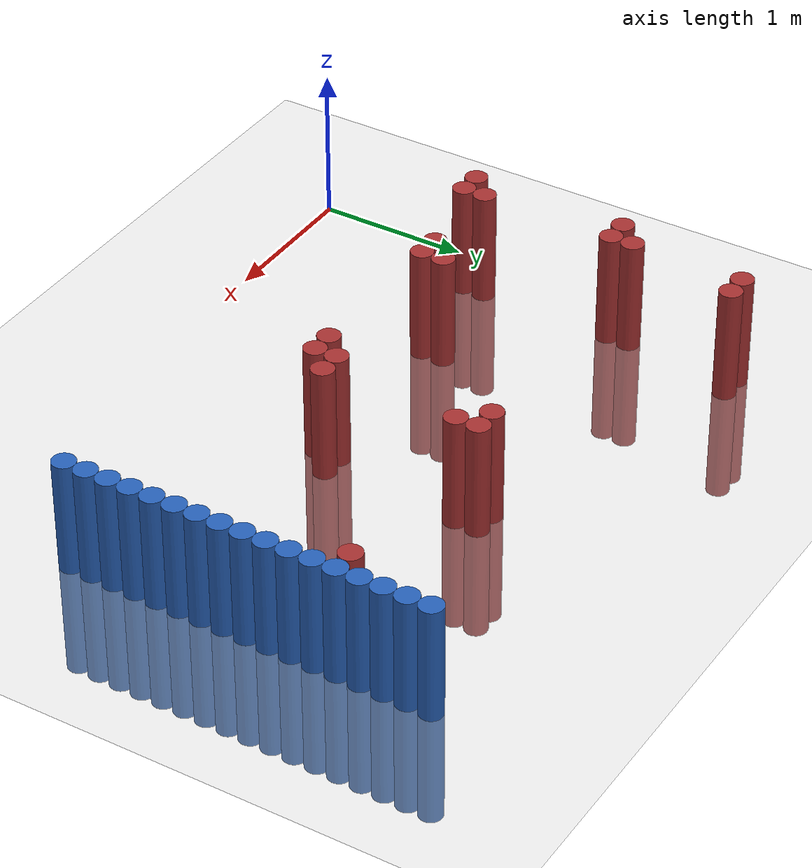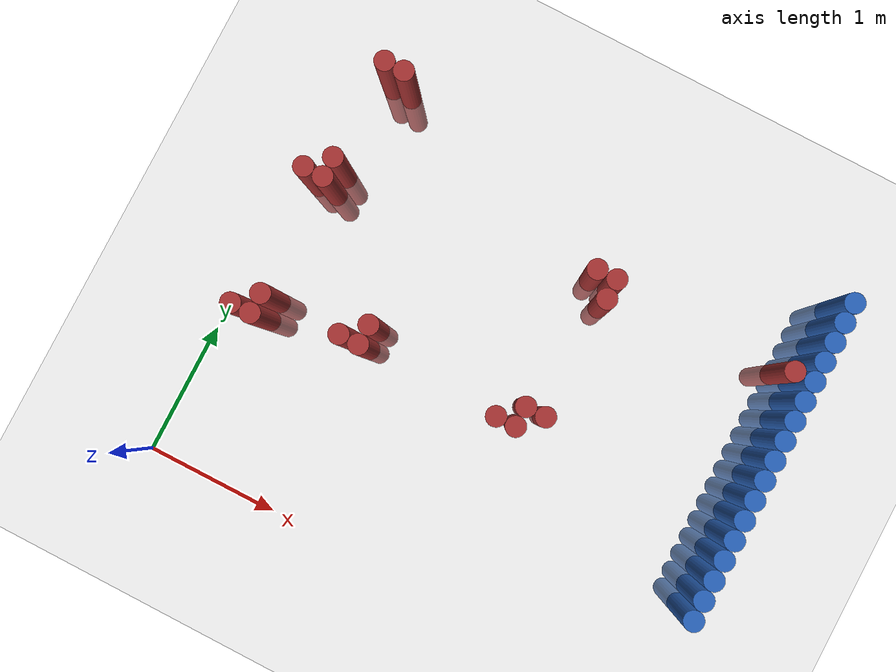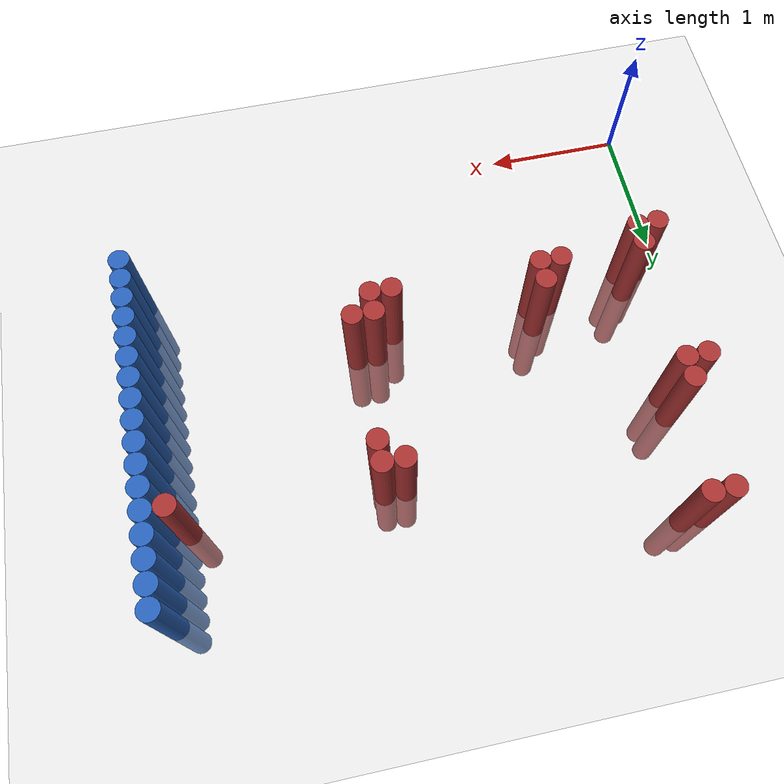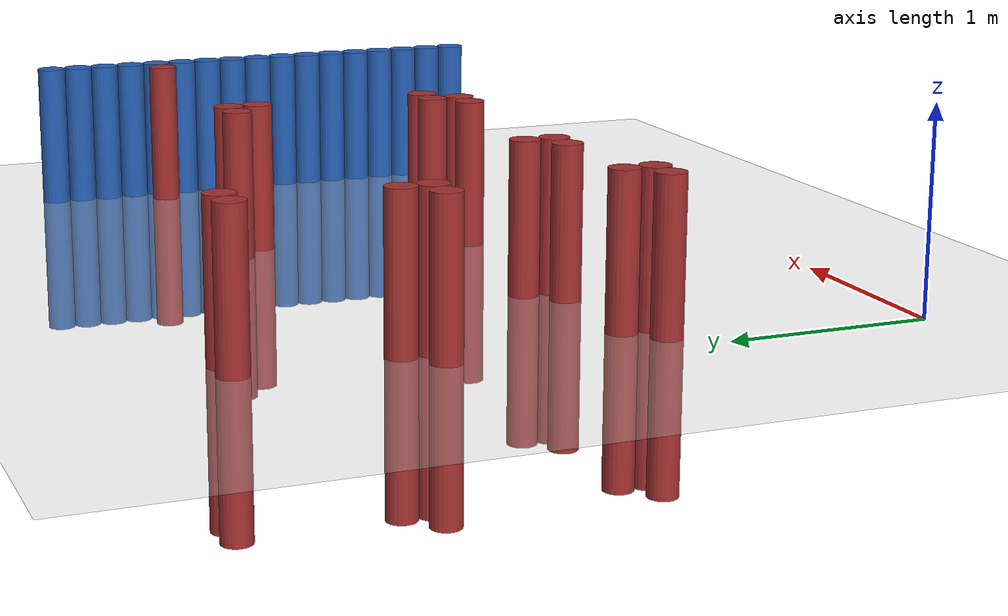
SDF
<sdf version="1.6">
 <world name="default">
  <model name="ground_plane">
   <static>1</static>
   <link name="link">
    <collision name="collision">
     <geometry><plane><normal>0 0 1</normal><size>100 100</size></plane></geometry>
     <surface><friction><ode><mu>100</mu><mu2>50</mu2></ode></friction></surface>
    </collision>
    <visual name="visual">
     <cast_shadows>0</cast_shadows>
     <geometry><plane><normal>0 0 1</normal><size>100 100</size></plane></geometry>
     <material>
      <script><uri>file://media/materials/scripts/gazebo.material</uri><name>Gazebo/Grey</name></script>
     </material>
    </visual>
   </link>
  </model>
  <model name="unit_cylinder_126">
   <static>1</static>
   <pose>3.925000 0.925000 0.000000 0.000000 0.000000 0.000000</pose>
   <link name="link">
    <inertial>
     <mass>1</mass>
     <inertia><ixx>0.145833</ixx><ixy>0</ixy><ixz>0</ixz><iyy>0.145833</iyy><iyz>0</iyz><izz>0.125</izz></inertia>
    </inertial>
    <collision name="collision">
     <geometry><cylinder><radius>0.075000</radius><length>1.5</length></cylinder></geometry>
    </collision>
    <visual name="visual">
     <geometry><cylinder><radius>0.075000</radius><length>1.5</length></cylinder></geometry>
     <material>
      <ambient>0.152000 0.379000 0.720000 1</ambient>
      <diffuse>0.152000 0.379000 0.720000 1</diffuse>
     </material>
     <material>
      <script><name>Gazebo/Grey</name><uri>file://media/materials/scripts/gazebo.material</uri></script>
     </material>
    </visual>
   </link>
  </model>
  <model name="unit_cylinder_128">
   <static>1</static>
   <pose>3.925000 1.075000 0.000000 0.000000 0.000000 0.000000</pose>
   <link name="link">
    <inertial>
     <mass>1</mass>
     <inertia><ixx>0.145833</ixx><ixy>0</ixy><ixz>0</ixz><iyy>0.145833</iyy><iyz>0</iyz><izz>0.125</izz></inertia>
    </inertial>
    <collision name="collision">
     <geometry><cylinder><radius>0.075000</radius><length>1.5</length></cylinder></geometry>
    </collision>
    <visual name="visual">
     <geometry><cylinder><radius>0.075000</radius><length>1.5</length></cylinder></geometry>
     <material>
      <ambient>0.152000 0.379000 0.720000 1</ambient>
      <diffuse>0.152000 0.379000 0.720000 1</diffuse>
     </material>
     <material>
      <script><name>Gazebo/Grey</name><uri>file://media/materials/scripts/gazebo.material</uri></script>
     </material>
    </visual>
   </link>
  </model>
  <model name="unit_cylinder_130">
   <static>1</static>
   <pose>3.925000 1.225000 0.000000 0.000000 0.000000 0.000000</pose>
   <link name="link">
    <inertial>
     <mass>1</mass>
     <inertia><ixx>0.145833</ixx><ixy>0</ixy><ixz>0</ixz><iyy>0.145833</iyy><iyz>0</iyz><izz>0.125</izz></inertia>
    </inertial>
    <collision name="collision">
     <geometry><cylinder><radius>0.075000</radius><length>1.5</length></cylinder></geometry>
    </collision>
    <visual name="visual">
     <geometry><cylinder><radius>0.075000</radius><length>1.5</length></cylinder></geometry>
     <material>
      <ambient>0.152000 0.379000 0.720000 1</ambient>
      <diffuse>0.152000 0.379000 0.720000 1</diffuse>
     </material>
     <material>
      <script><name>Gazebo/Grey</name><uri>file://media/materials/scripts/gazebo.material</uri></script>
     </material>
    </visual>
   </link>
  </model>
  <model name="unit_cylinder_132">
   <static>1</static>
   <pose>3.925000 1.375000 0.000000 0.000000 0.000000 0.000000</pose>
   <link name="link">
    <inertial>
     <mass>1</mass>
     <inertia><ixx>0.145833</ixx><ixy>0</ixy><ixz>0</ixz><iyy>0.145833</iyy><iyz>0</iyz><izz>0.125</izz></inertia>
    </inertial>
    <collision name="collision">
     <geometry><cylinder><radius>0.075000</radius><length>1.5</length></cylinder></geometry>
    </collision>
    <visual name="visual">
     <geometry><cylinder><radius>0.075000</radius><length>1.5</length></cylinder></geometry>
     <material>
      <ambient>0.152000 0.379000 0.720000 1</ambient>
      <diffuse>0.152000 0.379000 0.720000 1</diffuse>
     </material>
     <material>
      <script><name>Gazebo/Grey</name><uri>file://media/materials/scripts/gazebo.material</uri></script>
     </material>
    </visual>
   </link>
  </model>
  <model name="unit_cylinder_134">
   <static>1</static>
   <pose>3.925000 1.525000 0.000000 0.000000 0.000000 0.000000</pose>
   <link name="link">
    <inertial>
     <mass>1</mass>
     <inertia><ixx>0.145833</ixx><ixy>0</ixy><ixz>0</ixz><iyy>0.145833</iyy><iyz>0</iyz><izz>0.125</izz></inertia>
    </inertial>
    <collision name="collision">
     <geometry><cylinder><radius>0.075000</radius><length>1.5</length></cylinder></geometry>
    </collision>
    <visual name="visual">
     <geometry><cylinder><radius>0.075000</radius><length>1.5</length></cylinder></geometry>
     <material>
      <ambient>0.152000 0.379000 0.720000 1</ambient>
      <diffuse>0.152000 0.379000 0.720000 1</diffuse>
     </material>
     <material>
      <script><name>Gazebo/Grey</name><uri>file://media/materials/scripts/gazebo.material</uri></script>
     </material>
    </visual>
   </link>
  </model>
  <model name="unit_cylinder_136">
   <static>1</static>
   <pose>3.925000 1.675000 0.000000 0.000000 0.000000 0.000000</pose>
   <link name="link">
    <inertial>
     <mass>1</mass>
     <inertia><ixx>0.145833</ixx><ixy>0</ixy><ixz>0</ixz><iyy>0.145833</iyy><iyz>0</iyz><izz>0.125</izz></inertia>
    </inertial>
    <collision name="collision">
     <geometry><cylinder><radius>0.075000</radius><length>1.5</length></cylinder></geometry>
    </collision>
    <visual name="visual">
     <geometry><cylinder><radius>0.075000</radius><length>1.5</length></cylinder></geometry>
     <material>
      <ambient>0.152000 0.379000 0.720000 1</ambient>
      <diffuse>0.152000 0.379000 0.720000 1</diffuse>
     </material>
     <material>
      <script><name>Gazebo/Grey</name><uri>file://media/materials/scripts/gazebo.material</uri></script>
     </material>
    </visual>
   </link>
  </model>
  <model name="unit_cylinder_138">
   <static>1</static>
   <pose>3.925000 1.825000 0.000000 0.000000 0.000000 0.000000</pose>
   <link name="link">
    <inertial>
     <mass>1</mass>
     <inertia><ixx>0.145833</ixx><ixy>0</ixy><ixz>0</ixz><iyy>0.145833</iyy><iyz>0</iyz><izz>0.125</izz></inertia>
    </inertial>
    <collision name="collision">
     <geometry><cylinder><radius>0.075000</radius><length>1.5</length></cylinder></geometry>
    </collision>
    <visual name="visual">
     <geometry><cylinder><radius>0.075000</radius><length>1.5</length></cylinder></geometry>
     <material>
      <ambient>0.152000 0.379000 0.720000 1</ambient>
      <diffuse>0.152000 0.379000 0.720000 1</diffuse>
     </material>
     <material>
      <script><name>Gazebo/Grey</name><uri>file://media/materials/scripts/gazebo.material</uri></script>
     </material>
    </visual>
   </link>
  </model>
  <model name="unit_cylinder_140">
   <static>1</static>
   <pose>3.925000 1.975000 0.000000 0.000000 0.000000 0.000000</pose>
   <link name="link">
    <inertial>
     <mass>1</mass>
     <inertia><ixx>0.145833</ixx><ixy>0</ixy><ixz>0</ixz><iyy>0.145833</iyy><iyz>0</iyz><izz>0.125</izz></inertia>
    </inertial>
    <collision name="collision">
     <geometry><cylinder><radius>0.075000</radius><length>1.5</length></cylinder></geometry>
    </collision>
    <visual name="visual">
     <geometry><cylinder><radius>0.075000</radius><length>1.5</length></cylinder></geometry>
     <material>
      <ambient>0.152000 0.379000 0.720000 1</ambient>
      <diffuse>0.152000 0.379000 0.720000 1</diffuse>
     </material>
     <material>
      <script><name>Gazebo/Grey</name><uri>file://media/materials/scripts/gazebo.material</uri></script>
     </material>
    </visual>
   </link>
  </model>
  <model name="unit_cylinder_142">
   <static>1</static>
   <pose>3.925000 2.125000 0.000000 0.000000 0.000000 0.000000</pose>
   <link name="link">
    <inertial>
     <mass>1</mass>
     <inertia><ixx>0.145833</ixx><ixy>0</ixy><ixz>0</ixz><iyy>0.145833</iyy><iyz>0</iyz><izz>0.125</izz></inertia>
    </inertial>
    <collision name="collision">
     <geometry><cylinder><radius>0.075000</radius><length>1.5</length></cylinder></geometry>
    </collision>
    <visual name="visual">
     <geometry><cylinder><radius>0.075000</radius><length>1.5</length></cylinder></geometry>
     <material>
      <ambient>0.152000 0.379000 0.720000 1</ambient>
      <diffuse>0.152000 0.379000 0.720000 1</diffuse>
     </material>
     <material>
      <script><name>Gazebo/Grey</name><uri>file://media/materials/scripts/gazebo.material</uri></script>
     </material>
    </visual>
   </link>
  </model>
  <model name="unit_cylinder_144">
   <static>1</static>
   <pose>3.925000 2.275000 0.000000 0.000000 0.000000 0.000000</pose>
   <link name="link">
    <inertial>
     <mass>1</mass>
     <inertia><ixx>0.145833</ixx><ixy>0</ixy><ixz>0</ixz><iyy>0.145833</iyy><iyz>0</iyz><izz>0.125</izz></inertia>
    </inertial>
    <collision name="collision">
     <geometry><cylinder><radius>0.075000</radius><length>1.5</length></cylinder></geometry>
    </collision>
    <visual name="visual">
     <geometry><cylinder><radius>0.075000</radius><length>1.5</length></cylinder></geometry>
     <material>
      <ambient>0.152000 0.379000 0.720000 1</ambient>
      <diffuse>0.152000 0.379000 0.720000 1</diffuse>
     </material>
     <material>
      <script><name>Gazebo/Grey</name><uri>file://media/materials/scripts/gazebo.material</uri></script>
     </material>
    </visual>
   </link>
  </model>
  <model name="unit_cylinder_146">
   <static>1</static>
   <pose>3.925000 2.425000 0.000000 0.000000 0.000000 0.000000</pose>
   <link name="link">
    <inertial>
     <mass>1</mass>
     <inertia><ixx>0.145833</ixx><ixy>0</ixy><ixz>0</ixz><iyy>0.145833</iyy><iyz>0</iyz><izz>0.125</izz></inertia>
    </inertial>
    <collision name="collision">
     <geometry><cylinder><radius>0.075000</radius><length>1.5</length></cylinder></geometry>
    </collision>
    <visual name="visual">
     <geometry><cylinder><radius>0.075000</radius><length>1.5</length></cylinder></geometry>
     <material>
      <ambient>0.152000 0.379000 0.720000 1</ambient>
      <diffuse>0.152000 0.379000 0.720000 1</diffuse>
     </material>
     <material>
      <script><name>Gazebo/Grey</name><uri>file://media/materials/scripts/gazebo.material</uri></script>
     </material>
    </visual>
   </link>
  </model>
  <model name="unit_cylinder_148">
   <static>1</static>
   <pose>3.925000 2.575000 0.000000 0.000000 0.000000 0.000000</pose>
   <link name="link">
    <inertial>
     <mass>1</mass>
     <inertia><ixx>0.145833</ixx><ixy>0</ixy><ixz>0</ixz><iyy>0.145833</iyy><iyz>0</iyz><izz>0.125</izz></inertia>
    </inertial>
    <collision name="collision">
     <geometry><cylinder><radius>0.075000</radius><length>1.5</length></cylinder></geometry>
    </collision>
    <visual name="visual">
     <geometry><cylinder><radius>0.075000</radius><length>1.5</length></cylinder></geometry>
     <material>
      <ambient>0.152000 0.379000 0.720000 1</ambient>
      <diffuse>0.152000 0.379000 0.720000 1</diffuse>
     </material>
     <material>
      <script><name>Gazebo/Grey</name><uri>file://media/materials/scripts/gazebo.material</uri></script>
     </material>
    </visual>
   </link>
  </model>
  <model name="unit_cylinder_150">
   <static>1</static>
   <pose>3.925000 2.725000 0.000000 0.000000 0.000000 0.000000</pose>
   <link name="link">
    <inertial>
     <mass>1</mass>
     <inertia><ixx>0.145833</ixx><ixy>0</ixy><ixz>0</ixz><iyy>0.145833</iyy><iyz>0</iyz><izz>0.125</izz></inertia>
    </inertial>
    <collision name="collision">
     <geometry><cylinder><radius>0.075000</radius><length>1.5</length></cylinder></geometry>
    </collision>
    <visual name="visual">
     <geometry><cylinder><radius>0.075000</radius><length>1.5</length></cylinder></geometry>
     <material>
      <ambient>0.152000 0.379000 0.720000 1</ambient>
      <diffuse>0.152000 0.379000 0.720000 1</diffuse>
     </material>
     <material>
      <script><name>Gazebo/Grey</name><uri>file://media/materials/scripts/gazebo.material</uri></script>
     </material>
    </visual>
   </link>
  </model>
  <model name="unit_cylinder_152">
   <static>1</static>
   <pose>3.925000 2.875000 0.000000 0.000000 0.000000 0.000000</pose>
   <link name="link">
    <inertial>
     <mass>1</mass>
     <inertia><ixx>0.145833</ixx><ixy>0</ixy><ixz>0</ixz><iyy>0.145833</iyy><iyz>0</iyz><izz>0.125</izz></inertia>
    </inertial>
    <collision name="collision">
     <geometry><cylinder><radius>0.075000</radius><length>1.5</length></cylinder></geometry>
    </collision>
    <visual name="visual">
     <geometry><cylinder><radius>0.075000</radius><length>1.5</length></cylinder></geometry>
     <material>
      <ambient>0.152000 0.379000 0.720000 1</ambient>
      <diffuse>0.152000 0.379000 0.720000 1</diffuse>
     </material>
     <material>
      <script><name>Gazebo/Grey</name><uri>file://media/materials/scripts/gazebo.material</uri></script>
     </material>
    </visual>
   </link>
  </model>
  <model name="unit_cylinder_154">
   <static>1</static>
   <pose>3.925000 3.025000 0.000000 0.000000 0.000000 0.000000</pose>
   <link name="link">
    <inertial>
     <mass>1</mass>
     <inertia><ixx>0.145833</ixx><ixy>0</ixy><ixz>0</ixz><iyy>0.145833</iyy><iyz>0</iyz><izz>0.125</izz></inertia>
    </inertial>
    <collision name="collision">
     <geometry><cylinder><radius>0.075000</radius><length>1.5</length></cylinder></geometry>
    </collision>
    <visual name="visual">
     <geometry><cylinder><radius>0.075000</radius><length>1.5</length></cylinder></geometry>
     <material>
      <ambient>0.152000 0.379000 0.720000 1</ambient>
      <diffuse>0.152000 0.379000 0.720000 1</diffuse>
     </material>
     <material>
      <script><name>Gazebo/Grey</name><uri>file://media/materials/scripts/gazebo.material</uri></script>
     </material>
    </visual>
   </link>
  </model>
  <model name="unit_cylinder_156">
   <static>1</static>
   <pose>3.925000 3.175000 0.000000 0.000000 0.000000 0.000000</pose>
   <link name="link">
    <inertial>
     <mass>1</mass>
     <inertia><ixx>0.145833</ixx><ixy>0</ixy><ixz>0</ixz><iyy>0.145833</iyy><iyz>0</iyz><izz>0.125</izz></inertia>
    </inertial>
    <collision name="collision">
     <geometry><cylinder><radius>0.075000</radius><length>1.5</length></cylinder></geometry>
    </collision>
    <visual name="visual">
     <geometry><cylinder><radius>0.075000</radius><length>1.5</length></cylinder></geometry>
     <material>
      <ambient>0.152000 0.379000 0.720000 1</ambient>
      <diffuse>0.152000 0.379000 0.720000 1</diffuse>
     </material>
     <material>
      <script><name>Gazebo/Grey</name><uri>file://media/materials/scripts/gazebo.material</uri></script>
     </material>
    </visual>
   </link>
  </model>
  <model name="unit_cylinder_314">
   <static>1</static>
   <pose>0.175000 1.225000 0.000000 0.000000 0.000000 0.000000</pose>
   <link name="link">
    <inertial>
     <mass>1</mass>
     <inertia><ixx>0.145833</ixx><ixy>0</ixy><ixz>0</ixz><iyy>0.145833</iyy><iyz>0</iyz><izz>0.125</izz></inertia>
    </inertial>
    <collision name="collision">
     <geometry><cylinder><radius>0.075000</radius><length>1.5</length></cylinder></geometry>
    </collision>
    <visual name="visual">
     <geometry><cylinder><radius>0.075000</radius><length>1.5</length></cylinder></geometry>
     <material>
      <ambient>0.648000 0.192000 0.192000 1</ambient>
      <diffuse>0.648000 0.192000 0.192000 1</diffuse>
     </material>
     <material>
      <script><name>Gazebo/Grey</name><uri>file://media/materials/scripts/gazebo.material</uri></script>
     </material>
    </visual>
   </link>
  </model>
  <model name="unit_cylinder_315">
   <static>1</static>
   <pose>0.175000 2.275000 0.000000 0.000000 0.000000 0.000000</pose>
   <link name="link">
    <inertial>
     <mass>1</mass>
     <inertia><ixx>0.145833</ixx><ixy>0</ixy><ixz>0</ixz><iyy>0.145833</iyy><iyz>0</iyz><izz>0.125</izz></inertia>
    </inertial>
    <collision name="collision">
     <geometry><cylinder><radius>0.075000</radius><length>1.5</length></cylinder></geometry>
    </collision>
    <visual name="visual">
     <geometry><cylinder><radius>0.075000</radius><length>1.5</length></cylinder></geometry>
     <material>
      <ambient>0.648000 0.192000 0.192000 1</ambient>
      <diffuse>0.648000 0.192000 0.192000 1</diffuse>
     </material>
     <material>
      <script><name>Gazebo/Grey</name><uri>file://media/materials/scripts/gazebo.material</uri></script>
     </material>
    </visual>
   </link>
  </model>
  <model name="unit_cylinder_316">
   <static>1</static>
   <pose>0.325000 1.225000 0.000000 0.000000 0.000000 0.000000</pose>
   <link name="link">
    <inertial>
     <mass>1</mass>
     <inertia><ixx>0.145833</ixx><ixy>0</ixy><ixz>0</ixz><iyy>0.145833</iyy><iyz>0</iyz><izz>0.125</izz></inertia>
    </inertial>
    <collision name="collision">
     <geometry><cylinder><radius>0.075000</radius><length>1.5</length></cylinder></geometry>
    </collision>
    <visual name="visual">
     <geometry><cylinder><radius>0.075000</radius><length>1.5</length></cylinder></geometry>
     <material>
      <ambient>0.648000 0.192000 0.192000 1</ambient>
      <diffuse>0.648000 0.192000 0.192000 1</diffuse>
     </material>
     <material>
      <script><name>Gazebo/Grey</name><uri>file://media/materials/scripts/gazebo.material</uri></script>
     </material>
    </visual>
   </link>
  </model>
  <model name="unit_cylinder_317">
   <static>1</static>
   <pose>0.325000 1.375000 0.000000 0.000000 0.000000 0.000000</pose>
   <link name="link">
    <inertial>
     <mass>1</mass>
     <inertia><ixx>0.145833</ixx><ixy>0</ixy><ixz>0</ixz><iyy>0.145833</iyy><iyz>0</iyz><izz>0.125</izz></inertia>
    </inertial>
    <collision name="collision">
     <geometry><cylinder><radius>0.075000</radius><length>1.5</length></cylinder></geometry>
    </collision>
    <visual name="visual">
     <geometry><cylinder><radius>0.075000</radius><length>1.5</length></cylinder></geometry>
     <material>
      <ambient>0.648000 0.192000 0.192000 1</ambient>
      <diffuse>0.648000 0.192000 0.192000 1</diffuse>
     </material>
     <material>
      <script><name>Gazebo/Grey</name><uri>file://media/materials/scripts/gazebo.material</uri></script>
     </material>
    </visual>
   </link>
  </model>
  <model name="unit_cylinder_318">
   <static>1</static>
   <pose>0.325000 2.275000 0.000000 0.000000 0.000000 0.000000</pose>
   <link name="link">
    <inertial>
     <mass>1</mass>
     <inertia><ixx>0.145833</ixx><ixy>0</ixy><ixz>0</ixz><iyy>0.145833</iyy><iyz>0</iyz><izz>0.125</izz></inertia>
    </inertial>
    <collision name="collision">
     <geometry><cylinder><radius>0.075000</radius><length>1.5</length></cylinder></geometry>
    </collision>
    <visual name="visual">
     <geometry><cylinder><radius>0.075000</radius><length>1.5</length></cylinder></geometry>
     <material>
      <ambient>0.648000 0.192000 0.192000 1</ambient>
      <diffuse>0.648000 0.192000 0.192000 1</diffuse>
     </material>
     <material>
      <script><name>Gazebo/Grey</name><uri>file://media/materials/scripts/gazebo.material</uri></script>
     </material>
    </visual>
   </link>
  </model>
  <model name="unit_cylinder_319">
   <static>1</static>
   <pose>0.325000 2.425000 0.000000 0.000000 0.000000 0.000000</pose>
   <link name="link">
    <inertial>
     <mass>1</mass>
     <inertia><ixx>0.145833</ixx><ixy>0</ixy><ixz>0</ixz><iyy>0.145833</iyy><iyz>0</iyz><izz>0.125</izz></inertia>
    </inertial>
    <collision name="collision">
     <geometry><cylinder><radius>0.075000</radius><length>1.5</length></cylinder></geometry>
    </collision>
    <visual name="visual">
     <geometry><cylinder><radius>0.075000</radius><length>1.5</length></cylinder></geometry>
     <material>
      <ambient>0.648000 0.192000 0.192000 1</ambient>
      <diffuse>0.648000 0.192000 0.192000 1</diffuse>
     </material>
     <material>
      <script><name>Gazebo/Grey</name><uri>file://media/materials/scripts/gazebo.material</uri></script>
     </material>
    </visual>
   </link>
  </model>
  <model name="unit_cylinder_320">
   <static>1</static>
   <pose>0.325000 3.175000 0.000000 0.000000 0.000000 0.000000</pose>
   <link name="link">
    <inertial>
     <mass>1</mass>
     <inertia><ixx>0.145833</ixx><ixy>0</ixy><ixz>0</ixz><iyy>0.145833</iyy><iyz>0</iyz><izz>0.125</izz></inertia>
    </inertial>
    <collision name="collision">
     <geometry><cylinder><radius>0.075000</radius><length>1.5</length></cylinder></geometry>
    </collision>
    <visual name="visual">
     <geometry><cylinder><radius>0.075000</radius><length>1.5</length></cylinder></geometry>
     <material>
      <ambient>0.648000 0.192000 0.192000 1</ambient>
      <diffuse>0.648000 0.192000 0.192000 1</diffuse>
     </material>
     <material>
      <script><name>Gazebo/Grey</name><uri>file://media/materials/scripts/gazebo.material</uri></script>
     </material>
    </visual>
   </link>
  </model>
  <model name="unit_cylinder_321">
   <static>1</static>
   <pose>0.475000 3.175000 0.000000 0.000000 0.000000 0.000000</pose>
   <link name="link">
    <inertial>
     <mass>1</mass>
     <inertia><ixx>0.145833</ixx><ixy>0</ixy><ixz>0</ixz><iyy>0.145833</iyy><iyz>0</iyz><izz>0.125</izz></inertia>
    </inertial>
    <collision name="collision">
     <geometry><cylinder><radius>0.075000</radius><length>1.5</length></cylinder></geometry>
    </collision>
    <visual name="visual">
     <geometry><cylinder><radius>0.075000</radius><length>1.5</length></cylinder></geometry>
     <material>
      <ambient>0.648000 0.192000 0.192000 1</ambient>
      <diffuse>0.648000 0.192000 0.192000 1</diffuse>
     </material>
     <material>
      <script><name>Gazebo/Grey</name><uri>file://media/materials/scripts/gazebo.material</uri></script>
     </material>
    </visual>
   </link>
  </model>
  <model name="unit_cylinder_324">
   <static>1</static>
   <pose>0.925000 1.375000 0.000000 0.000000 0.000000 0.000000</pose>
   <link name="link">
    <inertial>
     <mass>1</mass>
     <inertia><ixx>0.145833</ixx><ixy>0</ixy><ixz>0</ixz><iyy>0.145833</iyy><iyz>0</iyz><izz>0.125</izz></inertia>
    </inertial>
    <collision name="collision">
     <geometry><cylinder><radius>0.075000</radius><length>1.5</length></cylinder></geometry>
    </collision>
    <visual name="visual">
     <geometry><cylinder><radius>0.075000</radius><length>1.5</length></cylinder></geometry>
     <material>
      <ambient>0.648000 0.192000 0.192000 1</ambient>
      <diffuse>0.648000 0.192000 0.192000 1</diffuse>
     </material>
     <material>
      <script><name>Gazebo/Grey</name><uri>file://media/materials/scripts/gazebo.material</uri></script>
     </material>
    </visual>
   </link>
  </model>
  <model name="unit_cylinder_327">
   <static>1</static>
   <pose>1.075000 1.375000 0.000000 0.000000 0.000000 0.000000</pose>
   <link name="link">
    <inertial>
     <mass>1</mass>
     <inertia><ixx>0.145833</ixx><ixy>0</ixy><ixz>0</ixz><iyy>0.145833</iyy><iyz>0</iyz><izz>0.125</izz></inertia>
    </inertial>
    <collision name="collision">
     <geometry><cylinder><radius>0.075000</radius><length>1.5</length></cylinder></geometry>
    </collision>
    <visual name="visual">
     <geometry><cylinder><radius>0.075000</radius><length>1.5</length></cylinder></geometry>
     <material>
      <ambient>0.648000 0.192000 0.192000 1</ambient>
      <diffuse>0.648000 0.192000 0.192000 1</diffuse>
     </material>
     <material>
      <script><name>Gazebo/Grey</name><uri>file://media/materials/scripts/gazebo.material</uri></script>
     </material>
    </visual>
   </link>
  </model>
  <model name="unit_cylinder_328">
   <static>1</static>
   <pose>1.075000 1.525000 0.000000 0.000000 0.000000 0.000000</pose>
   <link name="link">
    <inertial>
     <mass>1</mass>
     <inertia><ixx>0.145833</ixx><ixy>0</ixy><ixz>0</ixz><iyy>0.145833</iyy><iyz>0</iyz><izz>0.125</izz></inertia>
    </inertial>
    <collision name="collision">
     <geometry><cylinder><radius>0.075000</radius><length>1.5</length></cylinder></geometry>
    </collision>
    <visual name="visual">
     <geometry><cylinder><radius>0.075000</radius><length>1.5</length></cylinder></geometry>
     <material>
      <ambient>0.648000 0.192000 0.192000 1</ambient>
      <diffuse>0.648000 0.192000 0.192000 1</diffuse>
     </material>
     <material>
      <script><name>Gazebo/Grey</name><uri>file://media/materials/scripts/gazebo.material</uri></script>
     </material>
    </visual>
   </link>
  </model>
  <model name="unit_cylinder_330">
   <static>1</static>
   <pose>2.125000 1.375000 0.000000 0.000000 0.000000 0.000000</pose>
   <link name="link">
    <inertial>
     <mass>1</mass>
     <inertia><ixx>0.145833</ixx><ixy>0</ixy><ixz>0</ixz><iyy>0.145833</iyy><iyz>0</iyz><izz>0.125</izz></inertia>
    </inertial>
    <collision name="collision">
     <geometry><cylinder><radius>0.075000</radius><length>1.5</length></cylinder></geometry>
    </collision>
    <visual name="visual">
     <geometry><cylinder><radius>0.075000</radius><length>1.5</length></cylinder></geometry>
     <material>
      <ambient>0.648000 0.192000 0.192000 1</ambient>
      <diffuse>0.648000 0.192000 0.192000 1</diffuse>
     </material>
     <material>
      <script><name>Gazebo/Grey</name><uri>file://media/materials/scripts/gazebo.material</uri></script>
     </material>
    </visual>
   </link>
  </model>
  <model name="unit_cylinder_331">
   <static>1</static>
   <pose>2.275000 1.375000 0.000000 0.000000 0.000000 0.000000</pose>
   <link name="link">
    <inertial>
     <mass>1</mass>
     <inertia><ixx>0.145833</ixx><ixy>0</ixy><ixz>0</ixz><iyy>0.145833</iyy><iyz>0</iyz><izz>0.125</izz></inertia>
    </inertial>
    <collision name="collision">
     <geometry><cylinder><radius>0.075000</radius><length>1.5</length></cylinder></geometry>
    </collision>
    <visual name="visual">
     <geometry><cylinder><radius>0.075000</radius><length>1.5</length></cylinder></geometry>
     <material>
      <ambient>0.648000 0.192000 0.192000 1</ambient>
      <diffuse>0.648000 0.192000 0.192000 1</diffuse>
     </material>
     <material>
      <script><name>Gazebo/Grey</name><uri>file://media/materials/scripts/gazebo.material</uri></script>
     </material>
    </visual>
   </link>
  </model>
  <model name="unit_cylinder_332">
   <static>1</static>
   <pose>2.275000 1.525000 0.000000 0.000000 0.000000 0.000000</pose>
   <link name="link">
    <inertial>
     <mass>1</mass>
     <inertia><ixx>0.145833</ixx><ixy>0</ixy><ixz>0</ixz><iyy>0.145833</iyy><iyz>0</iyz><izz>0.125</izz></inertia>
    </inertial>
    <collision name="collision">
     <geometry><cylinder><radius>0.075000</radius><length>1.5</length></cylinder></geometry>
    </collision>
    <visual name="visual">
     <geometry><cylinder><radius>0.075000</radius><length>1.5</length></cylinder></geometry>
     <material>
      <ambient>0.648000 0.192000 0.192000 1</ambient>
      <diffuse>0.648000 0.192000 0.192000 1</diffuse>
     </material>
     <material>
      <script><name>Gazebo/Grey</name><uri>file://media/materials/scripts/gazebo.material</uri></script>
     </material>
    </visual>
   </link>
  </model>
  <model name="unit_cylinder_333">
   <static>1</static>
   <pose>2.275000 2.575000 0.000000 0.000000 0.000000 0.000000</pose>
   <link name="link">
    <inertial>
     <mass>1</mass>
     <inertia><ixx>0.145833</ixx><ixy>0</ixy><ixz>0</ixz><iyy>0.145833</iyy><iyz>0</iyz><izz>0.125</izz></inertia>
    </inertial>
    <collision name="collision">
     <geometry><cylinder><radius>0.075000</radius><length>1.5</length></cylinder></geometry>
    </collision>
    <visual name="visual">
     <geometry><cylinder><radius>0.075000</radius><length>1.5</length></cylinder></geometry>
     <material>
      <ambient>0.648000 0.192000 0.192000 1</ambient>
      <diffuse>0.648000 0.192000 0.192000 1</diffuse>
     </material>
     <material>
      <script><name>Gazebo/Grey</name><uri>file://media/materials/scripts/gazebo.material</uri></script>
     </material>
    </visual>
   </link>
  </model>
  <model name="unit_cylinder_337">
   <static>1</static>
   <pose>2.425000 1.525000 0.000000 0.000000 0.000000 0.000000</pose>
   <link name="link">
    <inertial>
     <mass>1</mass>
     <inertia><ixx>0.145833</ixx><ixy>0</ixy><ixz>0</ixz><iyy>0.145833</iyy><iyz>0</iyz><izz>0.125</izz></inertia>
    </inertial>
    <collision name="collision">
     <geometry><cylinder><radius>0.075000</radius><length>1.5</length></cylinder></geometry>
    </collision>
    <visual name="visual">
     <geometry><cylinder><radius>0.075000</radius><length>1.5</length></cylinder></geometry>
     <material>
      <ambient>0.648000 0.192000 0.192000 1</ambient>
      <diffuse>0.648000 0.192000 0.192000 1</diffuse>
     </material>
     <material>
      <script><name>Gazebo/Grey</name><uri>file://media/materials/scripts/gazebo.material</uri></script>
     </material>
    </visual>
   </link>
  </model>
  <model name="unit_cylinder_338">
   <static>1</static>
   <pose>2.425000 2.425000 0.000000 0.000000 0.000000 0.000000</pose>
   <link name="link">
    <inertial>
     <mass>1</mass>
     <inertia><ixx>0.145833</ixx><ixy>0</ixy><ixz>0</ixz><iyy>0.145833</iyy><iyz>0</iyz><izz>0.125</izz></inertia>
    </inertial>
    <collision name="collision">
     <geometry><cylinder><radius>0.075000</radius><length>1.5</length></cylinder></geometry>
    </collision>
    <visual name="visual">
     <geometry><cylinder><radius>0.075000</radius><length>1.5</length></cylinder></geometry>
     <material>
      <ambient>0.648000 0.192000 0.192000 1</ambient>
      <diffuse>0.648000 0.192000 0.192000 1</diffuse>
     </material>
     <material>
      <script><name>Gazebo/Grey</name><uri>file://media/materials/scripts/gazebo.material</uri></script>
     </material>
    </visual>
   </link>
  </model>
  <model name="unit_cylinder_339">
   <static>1</static>
   <pose>2.425000 2.575000 0.000000 0.000000 0.000000 0.000000</pose>
   <link name="link">
    <inertial>
     <mass>1</mass>
     <inertia><ixx>0.145833</ixx><ixy>0</ixy><ixz>0</ixz><iyy>0.145833</iyy><iyz>0</iyz><izz>0.125</izz></inertia>
    </inertial>
    <collision name="collision">
     <geometry><cylinder><radius>0.075000</radius><length>1.5</length></cylinder></geometry>
    </collision>
    <visual name="visual">
     <geometry><cylinder><radius>0.075000</radius><length>1.5</length></cylinder></geometry>
     <material>
      <ambient>0.648000 0.192000 0.192000 1</ambient>
      <diffuse>0.648000 0.192000 0.192000 1</diffuse>
     </material>
     <material>
      <script><name>Gazebo/Grey</name><uri>file://media/materials/scripts/gazebo.material</uri></script>
     </material>
    </visual>
   </link>
  </model>
  <model name="unit_cylinder_363">
   <static>1</static>
   <pose>3.775000 2.575000 0.000000 0.000000 0.000000 0.000000</pose>
   <link name="link">
    <inertial>
     <mass>1</mass>
     <inertia><ixx>0.145833</ixx><ixy>0</ixy><ixz>0</ixz><iyy>0.145833</iyy><iyz>0</iyz><izz>0.125</izz></inertia>
    </inertial>
    <collision name="collision">
     <geometry><cylinder><radius>0.075000</radius><length>1.5</length></cylinder></geometry>
    </collision>
    <visual name="visual">
     <geometry><cylinder><radius>0.075000</radius><length>1.5</length></cylinder></geometry>
     <material>
      <ambient>0.648000 0.192000 0.192000 1</ambient>
      <diffuse>0.648000 0.192000 0.192000 1</diffuse>
     </material>
     <material>
      <script><name>Gazebo/Grey</name><uri>file://media/materials/scripts/gazebo.material</uri></script>
     </material>
    </visual>
   </link>
  </model>
  <model name="unit_cylinder_385">
   <static>1</static>
   <pose>3.925000 0.775000 0.000000 0.000000 0.000000 0.000000</pose>
   <link name="link">
    <inertial>
     <mass>1</mass>
     <inertia><ixx>0.145833</ixx><ixy>0</ixy><ixz>0</ixz><iyy>0.145833</iyy><iyz>0</iyz><izz>0.125</izz></inertia>
    </inertial>
    <collision name="collision">
     <geometry><cylinder><radius>0.075000</radius><length>1.5</length></cylinder></geometry>
    </collision>
    <visual name="visual">
     <geometry><cylinder><radius>0.075000</radius><length>1.5</length></cylinder></geometry>
     <material>
      <ambient>0.152000 0.379000 0.720000 1</ambient>
      <diffuse>0.152000 0.379000 0.720000 1</diffuse>
     </material>
     <material>
      <script><name>Gazebo/Grey</name><uri>file://media/materials/scripts/gazebo.material</uri></script>
     </material>
    </visual>
   </link>
  </model>
  <model name="unit_cylinder_386">
   <static>1</static>
   <pose>3.925000 0.925000 0.000000 0.000000 0.000000 0.000000</pose>
   <link name="link">
    <inertial>
     <mass>1</mass>
     <inertia><ixx>0.145833</ixx><ixy>0</ixy><ixz>0</ixz><iyy>0.145833</iyy><iyz>0</iyz><izz>0.125</izz></inertia>
    </inertial>
    <collision name="collision">
     <geometry><cylinder><radius>0.075000</radius><length>1.5</length></cylinder></geometry>
    </collision>
    <visual name="visual">
     <geometry><cylinder><radius>0.075000</radius><length>1.5</length></cylinder></geometry>
     <material>
      <ambient>0.152000 0.379000 0.720000 1</ambient>
      <diffuse>0.152000 0.379000 0.720000 1</diffuse>
     </material>
     <material>
      <script><name>Gazebo/Grey</name><uri>file://media/materials/scripts/gazebo.material</uri></script>
     </material>
    </visual>
   </link>
  </model>
  <model name="unit_cylinder_387">
   <static>1</static>
   <pose>3.925000 1.075000 0.000000 0.000000 0.000000 0.000000</pose>
   <link name="link">
    <inertial>
     <mass>1</mass>
     <inertia><ixx>0.145833</ixx><ixy>0</ixy><ixz>0</ixz><iyy>0.145833</iyy><iyz>0</iyz><izz>0.125</izz></inertia>
    </inertial>
    <collision name="collision">
     <geometry><cylinder><radius>0.075000</radius><length>1.5</length></cylinder></geometry>
    </collision>
    <visual name="visual">
     <geometry><cylinder><radius>0.075000</radius><length>1.5</length></cylinder></geometry>
     <material>
      <ambient>0.152000 0.379000 0.720000 1</ambient>
      <diffuse>0.152000 0.379000 0.720000 1</diffuse>
     </material>
     <material>
      <script><name>Gazebo/Grey</name><uri>file://media/materials/scripts/gazebo.material</uri></script>
     </material>
    </visual>
   </link>
  </model>
  <model name="unit_cylinder_388">
   <static>1</static>
   <pose>3.925000 1.225000 0.000000 0.000000 0.000000 0.000000</pose>
   <link name="link">
    <inertial>
     <mass>1</mass>
     <inertia><ixx>0.145833</ixx><ixy>0</ixy><ixz>0</ixz><iyy>0.145833</iyy><iyz>0</iyz><izz>0.125</izz></inertia>
    </inertial>
    <collision name="collision">
     <geometry><cylinder><radius>0.075000</radius><length>1.5</length></cylinder></geometry>
    </collision>
    <visual name="visual">
     <geometry><cylinder><radius>0.075000</radius><length>1.5</length></cylinder></geometry>
     <material>
      <ambient>0.152000 0.379000 0.720000 1</ambient>
      <diffuse>0.152000 0.379000 0.720000 1</diffuse>
     </material>
     <material>
      <script><name>Gazebo/Grey</name><uri>file://media/materials/scripts/gazebo.material</uri></script>
     </material>
    </visual>
   </link>
  </model>
  <model name="unit_cylinder_389">
   <static>1</static>
   <pose>3.925000 1.375000 0.000000 0.000000 0.000000 0.000000</pose>
   <link name="link">
    <inertial>
     <mass>1</mass>
     <inertia><ixx>0.145833</ixx><ixy>0</ixy><ixz>0</ixz><iyy>0.145833</iyy><iyz>0</iyz><izz>0.125</izz></inertia>
    </inertial>
    <collision name="collision">
     <geometry><cylinder><radius>0.075000</radius><length>1.5</length></cylinder></geometry>
    </collision>
    <visual name="visual">
     <geometry><cylinder><radius>0.075000</radius><length>1.5</length></cylinder></geometry>
     <material>
      <ambient>0.152000 0.379000 0.720000 1</ambient>
      <diffuse>0.152000 0.379000 0.720000 1</diffuse>
     </material>
     <material>
      <script><name>Gazebo/Grey</name><uri>file://media/materials/scripts/gazebo.material</uri></script>
     </material>
    </visual>
   </link>
  </model>
  <model name="unit_cylinder_390">
   <static>1</static>
   <pose>3.925000 1.525000 0.000000 0.000000 0.000000 0.000000</pose>
   <link name="link">
    <inertial>
     <mass>1</mass>
     <inertia><ixx>0.145833</ixx><ixy>0</ixy><ixz>0</ixz><iyy>0.145833</iyy><iyz>0</iyz><izz>0.125</izz></inertia>
    </inertial>
    <collision name="collision">
     <geometry><cylinder><radius>0.075000</radius><length>1.5</length></cylinder></geometry>
    </collision>
    <visual name="visual">
     <geometry><cylinder><radius>0.075000</radius><length>1.5</length></cylinder></geometry>
     <material>
      <ambient>0.152000 0.379000 0.720000 1</ambient>
      <diffuse>0.152000 0.379000 0.720000 1</diffuse>
     </material>
     <material>
      <script><name>Gazebo/Grey</name><uri>file://media/materials/scripts/gazebo.material</uri></script>
     </material>
    </visual>
   </link>
  </model>
  <model name="unit_cylinder_391">
   <static>1</static>
   <pose>3.925000 1.675000 0.000000 0.000000 0.000000 0.000000</pose>
   <link name="link">
    <inertial>
     <mass>1</mass>
     <inertia><ixx>0.145833</ixx><ixy>0</ixy><ixz>0</ixz><iyy>0.145833</iyy><iyz>0</iyz><izz>0.125</izz></inertia>
    </inertial>
    <collision name="collision">
     <geometry><cylinder><radius>0.075000</radius><length>1.5</length></cylinder></geometry>
    </collision>
    <visual name="visual">
     <geometry><cylinder><radius>0.075000</radius><length>1.5</length></cylinder></geometry>
     <material>
      <ambient>0.152000 0.379000 0.720000 1</ambient>
      <diffuse>0.152000 0.379000 0.720000 1</diffuse>
     </material>
     <material>
      <script><name>Gazebo/Grey</name><uri>file://media/materials/scripts/gazebo.material</uri></script>
     </material>
    </visual>
   </link>
  </model>
  <model name="unit_cylinder_392">
   <static>1</static>
   <pose>3.925000 1.825000 0.000000 0.000000 0.000000 0.000000</pose>
   <link name="link">
    <inertial>
     <mass>1</mass>
     <inertia><ixx>0.145833</ixx><ixy>0</ixy><ixz>0</ixz><iyy>0.145833</iyy><iyz>0</iyz><izz>0.125</izz></inertia>
    </inertial>
    <collision name="collision">
     <geometry><cylinder><radius>0.075000</radius><length>1.5</length></cylinder></geometry>
    </collision>
    <visual name="visual">
     <geometry><cylinder><radius>0.075000</radius><length>1.5</length></cylinder></geometry>
     <material>
      <ambient>0.152000 0.379000 0.720000 1</ambient>
      <diffuse>0.152000 0.379000 0.720000 1</diffuse>
     </material>
     <material>
      <script><name>Gazebo/Grey</name><uri>file://media/materials/scripts/gazebo.material</uri></script>
     </material>
    </visual>
   </link>
  </model>
  <model name="unit_cylinder_393">
   <static>1</static>
   <pose>3.925000 1.975000 0.000000 0.000000 0.000000 0.000000</pose>
   <link name="link">
    <inertial>
     <mass>1</mass>
     <inertia><ixx>0.145833</ixx><ixy>0</ixy><ixz>0</ixz><iyy>0.145833</iyy><iyz>0</iyz><izz>0.125</izz></inertia>
    </inertial>
    <collision name="collision">
     <geometry><cylinder><radius>0.075000</radius><length>1.5</length></cylinder></geometry>
    </collision>
    <visual name="visual">
     <geometry><cylinder><radius>0.075000</radius><length>1.5</length></cylinder></geometry>
     <material>
      <ambient>0.152000 0.379000 0.720000 1</ambient>
      <diffuse>0.152000 0.379000 0.720000 1</diffuse>
     </material>
     <material>
      <script><name>Gazebo/Grey</name><uri>file://media/materials/scripts/gazebo.material</uri></script>
     </material>
    </visual>
   </link>
  </model>
  <model name="unit_cylinder_394">
   <static>1</static>
   <pose>3.925000 2.125000 0.000000 0.000000 0.000000 0.000000</pose>
   <link name="link">
    <inertial>
     <mass>1</mass>
     <inertia><ixx>0.145833</ixx><ixy>0</ixy><ixz>0</ixz><iyy>0.145833</iyy><iyz>0</iyz><izz>0.125</izz></inertia>
    </inertial>
    <collision name="collision">
     <geometry><cylinder><radius>0.075000</radius><length>1.5</length></cylinder></geometry>
    </collision>
    <visual name="visual">
     <geometry><cylinder><radius>0.075000</radius><length>1.5</length></cylinder></geometry>
     <material>
      <ambient>0.152000 0.379000 0.720000 1</ambient>
      <diffuse>0.152000 0.379000 0.720000 1</diffuse>
     </material>
     <material>
      <script><name>Gazebo/Grey</name><uri>file://media/materials/scripts/gazebo.material</uri></script>
     </material>
    </visual>
   </link>
  </model>
  <model name="unit_cylinder_395">
   <static>1</static>
   <pose>3.925000 2.275000 0.000000 0.000000 0.000000 0.000000</pose>
   <link name="link">
    <inertial>
     <mass>1</mass>
     <inertia><ixx>0.145833</ixx><ixy>0</ixy><ixz>0</ixz><iyy>0.145833</iyy><iyz>0</iyz><izz>0.125</izz></inertia>
    </inertial>
    <collision name="collision">
     <geometry><cylinder><radius>0.075000</radius><length>1.5</length></cylinder></geometry>
    </collision>
    <visual name="visual">
     <geometry><cylinder><radius>0.075000</radius><length>1.5</length></cylinder></geometry>
     <material>
      <ambient>0.152000 0.379000 0.720000 1</ambient>
      <diffuse>0.152000 0.379000 0.720000 1</diffuse>
     </material>
     <material>
      <script><name>Gazebo/Grey</name><uri>file://media/materials/scripts/gazebo.material</uri></script>
     </material>
    </visual>
   </link>
  </model>
  <model name="unit_cylinder_396">
   <static>1</static>
   <pose>3.925000 2.425000 0.000000 0.000000 0.000000 0.000000</pose>
   <link name="link">
    <inertial>
     <mass>1</mass>
     <inertia><ixx>0.145833</ixx><ixy>0</ixy><ixz>0</ixz><iyy>0.145833</iyy><iyz>0</iyz><izz>0.125</izz></inertia>
    </inertial>
    <collision name="collision">
     <geometry><cylinder><radius>0.075000</radius><length>1.5</length></cylinder></geometry>
    </collision>
    <visual name="visual">
     <geometry><cylinder><radius>0.075000</radius><length>1.5</length></cylinder></geometry>
     <material>
      <ambient>0.152000 0.379000 0.720000 1</ambient>
      <diffuse>0.152000 0.379000 0.720000 1</diffuse>
     </material>
     <material>
      <script><name>Gazebo/Grey</name><uri>file://media/materials/scripts/gazebo.material</uri></script>
     </material>
    </visual>
   </link>
  </model>
  <model name="unit_cylinder_397">
   <static>1</static>
   <pose>3.925000 2.575000 0.000000 0.000000 0.000000 0.000000</pose>
   <link name="link">
    <inertial>
     <mass>1</mass>
     <inertia><ixx>0.145833</ixx><ixy>0</ixy><ixz>0</ixz><iyy>0.145833</iyy><iyz>0</iyz><izz>0.125</izz></inertia>
    </inertial>
    <collision name="collision">
     <geometry><cylinder><radius>0.075000</radius><length>1.5</length></cylinder></geometry>
    </collision>
    <visual name="visual">
     <geometry><cylinder><radius>0.075000</radius><length>1.5</length></cylinder></geometry>
     <material>
      <ambient>0.152000 0.379000 0.720000 1</ambient>
      <diffuse>0.152000 0.379000 0.720000 1</diffuse>
     </material>
     <material>
      <script><name>Gazebo/Grey</name><uri>file://media/materials/scripts/gazebo.material</uri></script>
     </material>
    </visual>
   </link>
  </model>
  <model name="unit_cylinder_398">
   <static>1</static>
   <pose>3.925000 2.725000 0.000000 0.000000 0.000000 0.000000</pose>
   <link name="link">
    <inertial>
     <mass>1</mass>
     <inertia><ixx>0.145833</ixx><ixy>0</ixy><ixz>0</ixz><iyy>0.145833</iyy><iyz>0</iyz><izz>0.125</izz></inertia>
    </inertial>
    <collision name="collision">
     <geometry><cylinder><radius>0.075000</radius><length>1.5</length></cylinder></geometry>
    </collision>
    <visual name="visual">
     <geometry><cylinder><radius>0.075000</radius><length>1.5</length></cylinder></geometry>
     <material>
      <ambient>0.152000 0.379000 0.720000 1</ambient>
      <diffuse>0.152000 0.379000 0.720000 1</diffuse>
     </material>
     <material>
      <script><name>Gazebo/Grey</name><uri>file://media/materials/scripts/gazebo.material</uri></script>
     </material>
    </visual>
   </link>
  </model>
  <model name="unit_cylinder_399">
   <static>1</static>
   <pose>3.925000 2.875000 0.000000 0.000000 0.000000 0.000000</pose>
   <link name="link">
    <inertial>
     <mass>1</mass>
     <inertia><ixx>0.145833</ixx><ixy>0</ixy><ixz>0</ixz><iyy>0.145833</iyy><iyz>0</iyz><izz>0.125</izz></inertia>
    </inertial>
    <collision name="collision">
     <geometry><cylinder><radius>0.075000</radius><length>1.5</length></cylinder></geometry>
    </collision>
    <visual name="visual">
     <geometry><cylinder><radius>0.075000</radius><length>1.5</length></cylinder></geometry>
     <material>
      <ambient>0.152000 0.379000 0.720000 1</ambient>
      <diffuse>0.152000 0.379000 0.720000 1</diffuse>
     </material>
     <material>
      <script><name>Gazebo/Grey</name><uri>file://media/materials/scripts/gazebo.material</uri></script>
     </material>
    </visual>
   </link>
  </model>
  <model name="unit_cylinder_400">
   <static>1</static>
   <pose>3.925000 3.025000 0.000000 0.000000 0.000000 0.000000</pose>
   <link name="link">
    <inertial>
     <mass>1</mass>
     <inertia><ixx>0.145833</ixx><ixy>0</ixy><ixz>0</ixz><iyy>0.145833</iyy><iyz>0</iyz><izz>0.125</izz></inertia>
    </inertial>
    <collision name="collision">
     <geometry><cylinder><radius>0.075000</radius><length>1.5</length></cylinder></geometry>
    </collision>
    <visual name="visual">
     <geometry><cylinder><radius>0.075000</radius><length>1.5</length></cylinder></geometry>
     <material>
      <ambient>0.152000 0.379000 0.720000 1</ambient>
      <diffuse>0.152000 0.379000 0.720000 1</diffuse>
     </material>
     <material>
      <script><name>Gazebo/Grey</name><uri>file://media/materials/scripts/gazebo.material</uri></script>
     </material>
    </visual>
   </link>
  </model>
  <model name="unit_cylinder_401">
   <static>1</static>
   <pose>3.925000 3.175000 0.000000 0.000000 0.000000 0.000000</pose>
   <link name="link">
    <inertial>
     <mass>1</mass>
     <inertia><ixx>0.145833</ixx><ixy>0</ixy><ixz>0</ixz><iyy>0.145833</iyy><iyz>0</iyz><izz>0.125</izz></inertia>
    </inertial>
    <collision name="collision">
     <geometry><cylinder><radius>0.075000</radius><length>1.5</length></cylinder></geometry>
    </collision>
    <visual name="visual">
     <geometry><cylinder><radius>0.075000</radius><length>1.5</length></cylinder></geometry>
     <material>
      <ambient>0.152000 0.379000 0.720000 1</ambient>
      <diffuse>0.152000 0.379000 0.720000 1</diffuse>
     </material>
     <material>
      <script><name>Gazebo/Grey</name><uri>file://media/materials/scripts/gazebo.material</uri></script>
     </material>
    </visual>
   </link>
  </model>
 </world>
</sdf>
